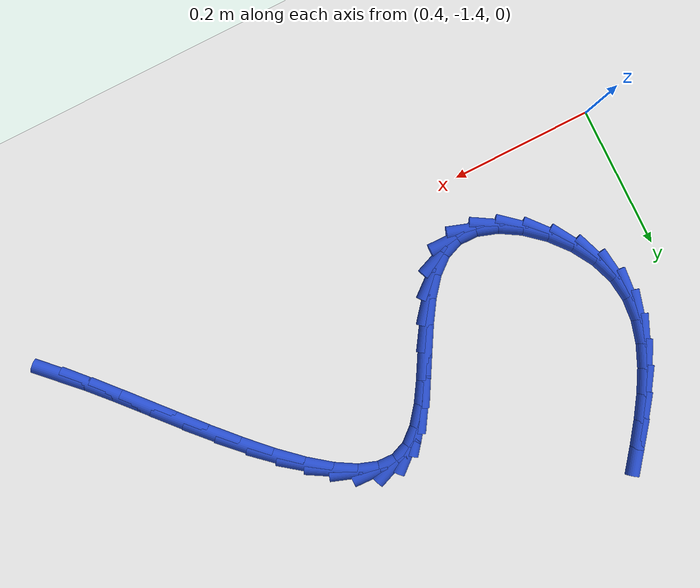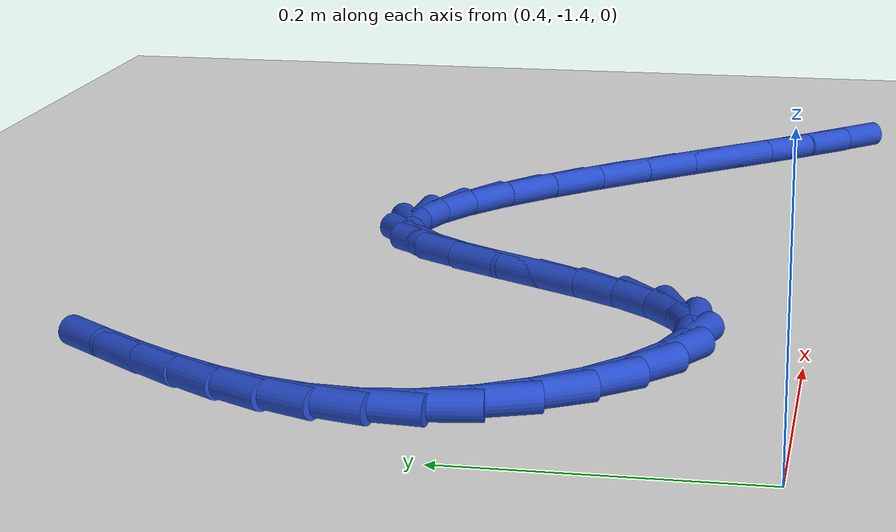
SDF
<sdf version="1.6">
 <world name="default">
  <model name="ground_plane">
   <static>1</static>
   <link name="link">
    <collision name="collision">
     <geometry><plane><normal>0 0 1</normal><size>100 100</size></plane></geometry>
     <surface><friction><ode><mu>100</mu><mu2>50</mu2></ode></friction></surface>
    </collision>
    <visual name="visual">
     <cast_shadows>0</cast_shadows>
     <geometry><plane><normal>0 0 1</normal><size>100 100</size></plane></geometry>
     <material>
      <script><uri>file://media/materials/scripts/gazebo.material</uri><name>Gazebo/WhiteGlow</name></script>
     </material>
    </visual>
   </link>
  </model>
  <model name="line">
   <link name="link_213">
    <pose>1.20388127049585 -1.4019899761502894 0.01 0 1.57 -0.7926439148327837</pose>
    <collision name="collision">
     <geometry><cylinder><radius>0.01</radius><length>0.08</length></cylinder></geometry>
    </collision>
    <visual name="visual">
     <material>
      <script><name>Gazebo/Blue</name><uri>file://media/materials/scripts/gazebo.material</uri></script>
     </material>
     <geometry><cylinder><radius>0.01</radius><length>0.08</length></cylinder></geometry>
    </visual>
   </link>
   <link name="link_214">
    <pose>1.1770167876611504 -1.3747333382645912 0.01 0 1.57 -0.8296352851947946</pose>
    <collision name="collision">
     <geometry><cylinder><radius>0.01</radius><length>0.08</length></cylinder></geometry>
    </collision>
    <visual name="visual">
     <material>
      <script><name>Gazebo/Blue</name><uri>file://media/materials/scripts/gazebo.material</uri></script>
     </material>
     <geometry><cylinder><radius>0.01</radius><length>0.08</length></cylinder></geometry>
    </visual>
   </link>
   <link name="link_215">
    <pose>1.1483823419292534 -1.3434464130913 0.01 0 1.57 -0.8477595796376347</pose>
    <collision name="collision">
     <geometry><cylinder><radius>0.01</radius><length>0.08</length></cylinder></geometry>
    </collision>
    <visual name="visual">
     <material>
      <script><name>Gazebo/Blue</name><uri>file://media/materials/scripts/gazebo.material</uri></script>
     </material>
     <geometry><cylinder><radius>0.01</radius><length>0.08</length></cylinder></geometry>
    </visual>
   </link>
   <link name="link_216">
    <pose>1.1183529016819906 -1.3094169844670436 0.01 0 1.57 -0.8519529729903642</pose>
    <collision name="collision">
     <geometry><cylinder><radius>0.01</radius><length>0.08</length></cylinder></geometry>
    </collision>
    <visual name="visual">
     <material>
      <script><name>Gazebo/Blue</name><uri>file://media/materials/scripts/gazebo.material</uri></script>
     </material>
     <geometry><cylinder><radius>0.01</radius><length>0.08</length></cylinder></geometry>
    </visual>
   </link>
   <link name="link_217">
    <pose>1.0873034353011901 -1.2739328362284459 0.01 0 1.57 -0.8440807899178703</pose>
    <collision name="collision">
     <geometry><cylinder><radius>0.01</radius><length>0.08</length></cylinder></geometry>
    </collision>
    <visual name="visual">
     <material>
      <script><name>Gazebo/Blue</name><uri>file://media/materials/scripts/gazebo.material</uri></script>
     </material>
     <geometry><cylinder><radius>0.01</radius><length>0.08</length></cylinder></geometry>
    </visual>
   </link>
   <link name="link_218">
    <pose>1.0556089111686824 -1.2382817522121343 0.01 0 1.57 -0.8239628110016837</pose>
    <collision name="collision">
     <geometry><cylinder><radius>0.01</radius><length>0.08</length></cylinder></geometry>
    </collision>
    <visual name="visual">
     <material>
      <script><name>Gazebo/Blue</name><uri>file://media/materials/scripts/gazebo.material</uri></script>
     </material>
     <geometry><cylinder><radius>0.01</radius><length>0.08</length></cylinder></geometry>
    </visual>
   </link>
   <link name="link_219">
    <pose>1.0236442976662978 -1.2037515162547354 0.01 0 1.57 -0.7894910460269691</pose>
    <collision name="collision">
     <geometry><cylinder><radius>0.01</radius><length>0.08</length></cylinder></geometry>
    </collision>
    <visual name="visual">
     <material>
      <script><name>Gazebo/Blue</name><uri>file://media/materials/scripts/gazebo.material</uri></script>
     </material>
     <geometry><cylinder><radius>0.01</radius><length>0.08</length></cylinder></geometry>
    </visual>
   </link>
   <link name="link_220">
    <pose>0.9917845631758664 -1.1716299121928757 0.01 0 1.57 -0.7360328174421293</pose>
    <collision name="collision">
     <geometry><cylinder><radius>0.01</radius><length>0.08</length></cylinder></geometry>
    </collision>
    <visual name="visual">
     <material>
      <script><name>Gazebo/Blue</name><uri>file://media/materials/scripts/gazebo.material</uri></script>
     </material>
     <geometry><cylinder><radius>0.01</radius><length>0.08</length></cylinder></geometry>
    </visual>
   </link>
   <link name="link_221">
    <pose>0.9604046760792176 -1.1432047238631806 0.01 0 1.57 -0.654875236792295</pose>
    <collision name="collision">
     <geometry><cylinder><radius>0.01</radius><length>0.08</length></cylinder></geometry>
    </collision>
    <visual name="visual">
     <material>
      <script><name>Gazebo/Blue</name><uri>file://media/materials/scripts/gazebo.material</uri></script>
     </material>
     <geometry><cylinder><radius>0.01</radius><length>0.08</length></cylinder></geometry>
    </visual>
   </link>
   <link name="link_222">
    <pose>0.9298796047581823 -1.1197637351022773 0.01 0 1.57 -0.5301117578095196</pose>
    <collision name="collision">
     <geometry><cylinder><radius>0.01</radius><length>0.08</length></cylinder></geometry>
    </collision>
    <visual name="visual">
     <material>
      <script><name>Gazebo/Blue</name><uri>file://media/materials/scripts/gazebo.material</uri></script>
     </material>
     <geometry><cylinder><radius>0.01</radius><length>0.08</length></cylinder></geometry>
    </visual>
   </link>
   <link name="link_223">
    <pose>0.90058431759459 -1.1025947297467917 0.01 0 1.57 -0.33401978533635324</pose>
    <collision name="collision">
     <geometry><cylinder><radius>0.01</radius><length>0.08</length></cylinder></geometry>
    </collision>
    <visual name="visual">
     <material>
      <script><name>Gazebo/Blue</name><uri>file://media/materials/scripts/gazebo.material</uri></script>
     </material>
     <geometry><cylinder><radius>0.01</radius><length>0.08</length></cylinder></geometry>
    </visual>
   </link>
   <link name="link_224">
    <pose>0.8728937829702702 -1.0929854916333501 0.01 0 1.57 -0.02961650024854178</pose>
    <collision name="collision">
     <geometry><cylinder><radius>0.01</radius><length>0.08</length></cylinder></geometry>
    </collision>
    <visual name="visual">
     <material>
      <script><name>Gazebo/Blue</name><uri>file://media/materials/scripts/gazebo.material</uri></script>
     </material>
     <geometry><cylinder><radius>0.01</radius><length>0.08</length></cylinder></geometry>
    </visual>
   </link>
   <link name="link_225">
    <pose>0.8471829692670539 -1.0922238045985793 0.01 0 1.57 0.3758100693082158</pose>
    <collision name="collision">
     <geometry><cylinder><radius>0.01</radius><length>0.08</length></cylinder></geometry>
    </collision>
    <visual name="visual">
     <material>
      <script><name>Gazebo/Blue</name><uri>file://media/materials/scripts/gazebo.material</uri></script>
     </material>
     <geometry><cylinder><radius>0.01</radius><length>0.08</length></cylinder></geometry>
    </visual>
   </link>
   <link name="link_226">
    <pose>0.8237880760455987 -1.1014545511614744 0.01 0 1.57 0.7131528822515993</pose>
    <collision name="collision">
     <geometry><cylinder><radius>0.01</radius><length>0.08</length></cylinder></geometry>
    </collision>
    <visual name="visual">
     <material>
      <script><name>Gazebo/Blue</name><uri>file://media/materials/scripts/gazebo.material</uri></script>
     </material>
     <geometry><cylinder><radius>0.01</radius><length>0.08</length></cylinder></geometry>
    </visual>
   </link>
   <link name="link_227">
    <pose>0.8025124478743927 -1.119858517998399 0.01 0 1.57 0.9087970349193627</pose>
    <collision name="collision">
     <geometry><cylinder><radius>0.01</radius><length>0.08</length></cylinder></geometry>
    </collision>
    <visual name="visual">
     <material>
      <script><name>Gazebo/Blue</name><uri>file://media/materials/scripts/gazebo.material</uri></script>
     </material>
     <geometry><cylinder><radius>0.01</radius><length>0.08</length></cylinder></geometry>
    </visual>
   </link>
   <link name="link_228">
    <pose>0.7827721303568077 -1.1451889133667916 0.01 0 1.57 1.0107226969598198</pose>
    <collision name="collision">
     <geometry><cylinder><radius>0.01</radius><length>0.08</length></cylinder></geometry>
    </collision>
    <visual name="visual">
     <material>
      <script><name>Gazebo/Blue</name><uri>file://media/materials/scripts/gazebo.material</uri></script>
     </material>
     <geometry><cylinder><radius>0.01</radius><length>0.08</length></cylinder></geometry>
    </visual>
   </link>
   <link name="link_229">
    <pose>0.7639744436076743 -1.1751667834987325 0.01 0 1.57 1.0524876551143492</pose>
    <collision name="collision">
     <geometry><cylinder><radius>0.01</radius><length>0.08</length></cylinder></geometry>
    </collision>
    <visual name="visual">
     <material>
      <script><name>Gazebo/Blue</name><uri>file://media/materials/scripts/gazebo.material</uri></script>
     </material>
     <geometry><cylinder><radius>0.01</radius><length>0.08</length></cylinder></geometry>
    </visual>
   </link>
   <link name="link_230">
    <pose>0.7455267077418226 -1.2075131746263015 0.01 0 1.57 1.0480406467853092</pose>
    <collision name="collision">
     <geometry><cylinder><radius>0.01</radius><length>0.08</length></cylinder></geometry>
    </collision>
    <visual name="visual">
     <material>
      <script><name>Gazebo/Blue</name><uri>file://media/materials/scripts/gazebo.material</uri></script>
     </material>
     <geometry><cylinder><radius>0.01</radius><length>0.08</length></cylinder></geometry>
    </visual>
   </link>
   <link name="link_231">
    <pose>0.7268362428740824 -1.2399491329815782 0.01 0 1.57 0.9975511137997657</pose>
    <collision name="collision">
     <geometry><cylinder><radius>0.01</radius><length>0.08</length></cylinder></geometry>
    </collision>
    <visual name="visual">
     <material>
      <script><name>Gazebo/Blue</name><uri>file://media/materials/scripts/gazebo.material</uri></script>
     </material>
     <geometry><cylinder><radius>0.01</radius><length>0.08</length></cylinder></geometry>
    </visual>
   </link>
   <link name="link_232">
    <pose>0.7073103691192845 -1.2701957047966432 0.01 0 1.57 0.88826601686077</pose>
    <collision name="collision">
     <geometry><cylinder><radius>0.01</radius><length>0.08</length></cylinder></geometry>
    </collision>
    <visual name="visual">
     <material>
      <script><name>Gazebo/Blue</name><uri>file://media/materials/scripts/gazebo.material</uri></script>
     </material>
     <geometry><cylinder><radius>0.01</radius><length>0.08</length></cylinder></geometry>
    </visual>
   </link>
   <link name="link_233">
    <pose>0.6863564065922592 -1.2959739363035754 0.01 0 1.57 0.6917853995479426</pose>
    <collision name="collision">
     <geometry><cylinder><radius>0.01</radius><length>0.08</length></cylinder></geometry>
    </collision>
    <visual name="visual">
     <material>
      <script><name>Gazebo/Blue</name><uri>file://media/materials/scripts/gazebo.material</uri></script>
     </material>
     <geometry><cylinder><radius>0.01</radius><length>0.08</length></cylinder></geometry>
    </visual>
   </link>
   <link name="link_234">
    <pose>0.6633816754078353 -1.3150048737344562 0.01 0 1.57 0.3727243170015185</pose>
    <collision name="collision">
     <geometry><cylinder><radius>0.01</radius><length>0.08</length></cylinder></geometry>
    </collision>
    <visual name="visual">
     <material>
      <script><name>Gazebo/Blue</name><uri>file://media/materials/scripts/gazebo.material</uri></script>
     </material>
     <geometry><cylinder><radius>0.01</radius><length>0.08</length></cylinder></geometry>
    </visual>
   </link>
   <link name="link_235">
    <pose>0.6377936385117186 -1.3250098125888736 0.01 0 1.57 -0.017589003781277982</pose>
    <collision name="collision">
     <geometry><cylinder><radius>0.01</radius><length>0.08</length></cylinder></geometry>
    </collision>
    <visual name="visual">
     <material>
      <script><name>Gazebo/Blue</name><uri>file://media/materials/scripts/gazebo.material</uri></script>
     </material>
     <geometry><cylinder><radius>0.01</radius><length>0.08</length></cylinder></geometry>
    </visual>
   </link>
   <link name="link_236">
    <pose>0.6094589248115633 -1.3245113818010483 0.01 0 1.57 -0.32134422609361785</pose>
    <collision name="collision">
     <geometry><cylinder><radius>0.01</radius><length>0.08</length></cylinder></geometry>
    </collision>
    <visual name="visual">
     <material>
      <script><name>Gazebo/Blue</name><uri>file://media/materials/scripts/gazebo.material</uri></script>
     </material>
     <geometry><cylinder><radius>0.01</radius><length>0.08</length></cylinder></geometry>
    </visual>
   </link>
   <link name="link_237">
    <pose>0.5797228325485853 -1.314612774358157 0.01 0 1.57 -0.5399226667041768</pose>
    <collision name="collision">
     <geometry><cylinder><radius>0.01</radius><length>0.08</length></cylinder></geometry>
    </collision>
    <visual name="visual">
     <material>
      <script><name>Gazebo/Blue</name><uri>file://media/materials/scripts/gazebo.material</uri></script>
     </material>
     <geometry><cylinder><radius>0.01</radius><length>0.08</length></cylinder></geometry>
    </visual>
   </link>
   <link name="link_238">
    <pose>0.5502277375165829 -1.2969356410497626 0.01 0 1.57 -0.7120986783273485</pose>
    <collision name="collision">
     <geometry><cylinder><radius>0.01</radius><length>0.08</length></cylinder></geometry>
    </collision>
    <visual name="visual">
     <material>
      <script><name>Gazebo/Blue</name><uri>file://media/materials/scripts/gazebo.material</uri></script>
     </material>
     <geometry><cylinder><radius>0.01</radius><length>0.08</length></cylinder></geometry>
    </visual>
   </link>
   <link name="link_239">
    <pose>0.5226160155093548 -1.273101632665429 0.01 0 1.57 -0.8668729681251682</pose>
    <collision name="collision">
     <geometry><cylinder><radius>0.01</radius><length>0.08</length></cylinder></geometry>
    </collision>
    <visual name="visual">
     <material>
      <script><name>Gazebo/Blue</name><uri>file://media/materials/scripts/gazebo.material</uri></script>
     </material>
     <geometry><cylinder><radius>0.01</radius><length>0.08</length></cylinder></geometry>
    </visual>
   </link>
   <link name="link_240">
    <pose>0.4985300423206991 -1.244732399994718 0.01 0 1.57 -1.026901525973012</pose>
    <collision name="collision">
     <geometry><cylinder><radius>0.01</radius><length>0.08</length></cylinder></geometry>
    </collision>
    <visual name="visual">
     <material>
      <script><name>Gazebo/Blue</name><uri>file://media/materials/scripts/gazebo.material</uri></script>
     </material>
     <geometry><cylinder><radius>0.01</radius><length>0.08</length></cylinder></geometry>
    </visual>
   </link>
   <link name="link_241">
    <pose>0.47961219374441405 -1.2134495938271934 0.01 0 1.57 -1.2149074156288666</pose>
    <collision name="collision">
     <geometry><cylinder><radius>0.01</radius><length>0.08</length></cylinder></geometry>
    </collision>
    <visual name="visual">
     <material>
      <script><name>Gazebo/Blue</name><uri>file://media/materials/scripts/gazebo.material</uri></script>
     </material>
     <geometry><cylinder><radius>0.01</radius><length>0.08</length></cylinder></geometry>
    </visual>
   </link>
   <link name="link_242">
    <pose>0.4675033107278357 -1.1808740101499466 0.01 0 1.57 -1.438479785697457</pose>
    <collision name="collision">
     <geometry><cylinder><radius>0.01</radius><length>0.08</length></cylinder></geometry>
    </collision>
    <visual name="visual">
     <material>
      <script><name>Gazebo/Blue</name><uri>file://media/materials/scripts/gazebo.material</uri></script>
     </material>
     <geometry><cylinder><radius>0.01</radius><length>0.08</length></cylinder></geometry>
    </visual>
   </link>
   <link name="link_243">
    <pose>0.46316067983394293 -1.1482457528147312 0.01 0 1.57 1.4900181853404952</pose>
    <collision name="collision">
     <geometry><cylinder><radius>0.01</radius><length>0.08</length></cylinder></geometry>
    </collision>
    <visual name="visual">
     <material>
      <script><name>Gazebo/Blue</name><uri>file://media/materials/scripts/gazebo.material</uri></script>
     </material>
     <geometry><cylinder><radius>0.01</radius><length>0.08</length></cylinder></geometry>
    </visual>
   </link>
   <link name="link_244">
    <pose>0.46578514086171047 -1.1158267072835155 0.01 0 1.57 1.3115495769937935</pose>
    <collision name="collision">
     <geometry><cylinder><radius>0.01</radius><length>0.08</length></cylinder></geometry>
    </collision>
    <visual name="visual">
     <material>
      <script><name>Gazebo/Blue</name><uri>file://media/materials/scripts/gazebo.material</uri></script>
     </material>
     <geometry><cylinder><radius>0.01</radius><length>0.08</length></cylinder></geometry>
    </visual>
   </link>
   <link name="link_245">
    <pose>0.47429931528149066 -1.0837238108063378 0.01 0 1.57 1.1726052792672985</pose>
    <collision name="collision">
     <geometry><cylinder><radius>0.01</radius><length>0.08</length></cylinder></geometry>
    </collision>
    <visual name="visual">
     <material>
      <script><name>Gazebo/Blue</name><uri>file://media/materials/scripts/gazebo.material</uri></script>
     </material>
     <geometry><cylinder><radius>0.01</radius><length>0.08</length></cylinder></geometry>
    </visual>
   </link>
   <link name="link_246">
    <pose>0.4876258245636364 -1.0520440006332363 0.01 0 1.57 1.0697027005567443</pose>
    <collision name="collision">
     <geometry><cylinder><radius>0.01</radius><length>0.08</length></cylinder></geometry>
    </collision>
    <visual name="visual">
     <material>
      <script><name>Gazebo/Blue</name><uri>file://media/materials/scripts/gazebo.material</uri></script>
     </material>
     <geometry><cylinder><radius>0.01</radius><length>0.08</length></cylinder></geometry>
    </visual>
   </link>
   <link name="link_247">
    <pose>0.5046872901785 -1.020894214014249 0.01 0 1.57 0.9970588296851024</pose>
    <collision name="collision">
     <geometry><cylinder><radius>0.01</radius><length>0.08</length></cylinder></geometry>
    </collision>
    <visual name="visual">
     <material>
      <script><name>Gazebo/Blue</name><uri>file://media/materials/scripts/gazebo.material</uri></script>
     </material>
     <geometry><cylinder><radius>0.01</radius><length>0.08</length></cylinder></geometry>
    </visual>
   </link>
   <link name="link_248">
    <pose>0.5244063335964332 -0.9903813881994146 0.01 0 1.57 0.9497526938039588</pose>
    <collision name="collision">
     <geometry><cylinder><radius>0.01</radius><length>0.08</length></cylinder></geometry>
    </collision>
    <visual name="visual">
     <material>
      <script><name>Gazebo/Blue</name><uri>file://media/materials/scripts/gazebo.material</uri></script>
     </material>
     <geometry><cylinder><radius>0.01</radius><length>0.08</length></cylinder></geometry>
    </visual>
   </link>
   <link name="link_249">
    <pose>0.54570557628779 -0.9606124604387695 0.01 0 1.57 0.9247881546595191</pose>
    <collision name="collision">
     <geometry><cylinder><radius>0.01</radius><length>0.08</length></cylinder></geometry>
    </collision>
    <visual name="visual">
     <material>
      <script><name>Gazebo/Blue</name><uri>file://media/materials/scripts/gazebo.material</uri></script>
     </material>
     <geometry><cylinder><radius>0.01</radius><length>0.08</length></cylinder></geometry>
    </visual>
   </link>
  </model>
 </world>
</sdf>
